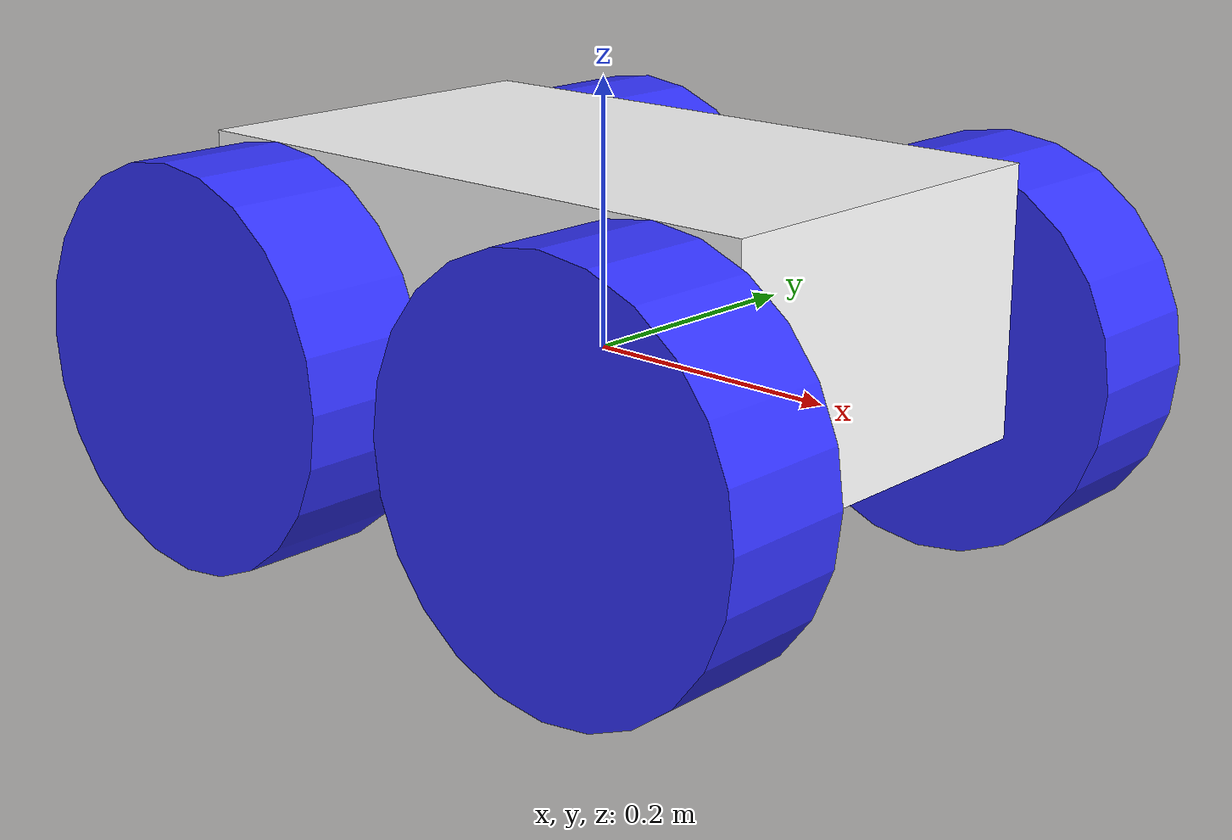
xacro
<?xml version="1.0"?>
<robot xmlns:xacro="http://www.ros.org/wiki/xacro"  name="robot">

    <xacro:include filename="inertial_macros.xacro"/>

    <material name="white">
        <color rgba="1 1 1 1" />
    </material>

    <material name="orange">
        <color rgba="1 0.3 0.1 1" />
    </material>

    <material name="blue">
        <color rgba="0.2 0.2 1 1" />
    </material>

    <material name="black">
        <color rgba="0 0 0 1" />
    </material>

    <material name="red">
        <color rgba="1 0 0 1" />
    </material>

    <!-- Example link -->
    <link name="base_link">
    </link>

    <joint name="base_footprint_joint" type="fixed">
        <parent link="base_link"/>
        <child link="base_footprint"/>
        <origin xyz="0 0 0" rpy="0 0 0"/>
    </joint>

    <link name="base_footprint">
    </link>

    <!-- CHASSIS LINK-->
    <joint name="chassis_joint" type="fixed">
        <parent link= "base_link"/>
        <child link="chassis"/>
        <origin xyz="0 0 0"/>
    </joint>

    <link name="chassis">
        <visual>
            <origin xyz="0 0 0.05"/>
            <geometry>
                <box size="0.5 0.3 0.2"/>
            </geometry>
            <material name="white"/>
        </visual>
        <collision>
            <geometry>
                <box size="0.5 0.3 0.2"/>
            </geometry>
        </collision>
        <xacro:inertial_box mass="0.5" x="1.0" y="0.6" z="0.3">
            <origin xyz="0 0 0.05" rpy="0 0 0"/>
        </xacro:inertial_box>
    </link>

    <gazebo reference="chassis">
        <material>Gazebo/White</material>
    </gazebo>

    <!--FORWARD_LEFT LINK-->
    <joint name="fl_wheel_joint" type="continuous">
        <parent link="base_link"/>
        <child link="fl_wheel"/>
        <origin xyz="0.18 0.2 0" rpy="-${pi/2} 0 0"/>
        <axis xyz="0 0 1"/>
    </joint>

    <link name="fl_wheel">
        <visual>
            <geometry>
                <cylinder radius="0.15" length="0.1"/>
            </geometry>
            <material name="blue"/>
        </visual>
        <collision>
            <geometry>
                <cylinder radius="0.15" length="0.1"/>
            </geometry>
        </collision>
        <xacro:inertial_cylinder mass="0.1" length="0.1" radius="0.15">
            <origin xyz="0 0 0" rpy="0 0 0"/>
        </xacro:inertial_cylinder>
    </link>

    <gazebo reference="fl_wheel">
        <material>Gazebo/Blue</material>
    </gazebo>

    <!--FORWARD_RIGHT LINK-->
    <joint name="fr_wheel_joint" type="continuous">
        <parent link="base_link"/>
        <child link="fr_wheel"/>
        <origin xyz="0.18 -0.2 0" rpy="-${pi/2} 0 0"/>
        <axis xyz="0 0 1"/>
    </joint>

    <link name="fr_wheel">
        <visual>
            <geometry>
                <cylinder radius="0.15" length="0.1"/>
            </geometry>
            <material name="blue"/>
        </visual>
        <collision>
            <geometry>
                <cylinder radius="0.15" length="0.1"/>
            </geometry>
        </collision>
        <xacro:inertial_cylinder mass="0.1" length="0.1" radius="0.15">
            <origin xyz="0 0 0" rpy="0 0 0"/>
        </xacro:inertial_cylinder>
    </link>
    <gazebo reference="fr_wheel">
        <material>Gazebo/Blue</material>
    </gazebo>

    <!--BACK_LEFT LINK-->
    <joint name="bl_wheel_joint" type="continuous">
        <parent link="base_link"/>
        <child link="bl_wheel"/>
        <origin xyz="-0.18 0.2 0" rpy="-${pi/2} 0 0"/>
        <axis xyz="0 0 1"/>
    </joint>

    <link name="bl_wheel">
        <visual>
            <geometry>
                <cylinder radius="0.15" length="0.1"/>
            </geometry>
            <material name="blue"/>
        </visual>
        <collision>
            <geometry>
                <cylinder radius="0.15" length="0.1"/>
            </geometry>
        </collision>
        <xacro:inertial_cylinder mass="0.1" length="0.1" radius="0.15">
            <origin xyz="0 0 0" rpy="0 0 0"/>
        </xacro:inertial_cylinder>
    </link>
    <gazebo reference="bl_wheel">
        <material>Gazebo/Blue</material>
    </gazebo>

    <!--BACK_RIGHT LINK-->
    <joint name="br_wheel_joint" type="continuous">
        <parent link="base_link"/>
        <child link="br_wheel"/>
        <origin xyz="-0.18 -0.2 0" rpy="-${pi/2} 0 0"/>
        <axis xyz="0 0 1"/>
    </joint>

    <link name="br_wheel">
        <visual>
            <geometry>
                <cylinder radius="0.15" length="0.1"/>
            </geometry>
            <material name="blue"/>
        </visual>
        <collision>
            <geometry>
                <cylinder radius="0.15" length="0.1"/>
            </geometry>
        </collision>
        <xacro:inertial_cylinder mass="0.1" length="0.1" radius="0.15">
            <origin xyz="0 0 0" rpy="0 0 0"/>
        </xacro:inertial_cylinder>
    </link>
    <gazebo reference="br_wheel">
        <material>Gazebo/Blue</material>
    </gazebo>

</robot>
